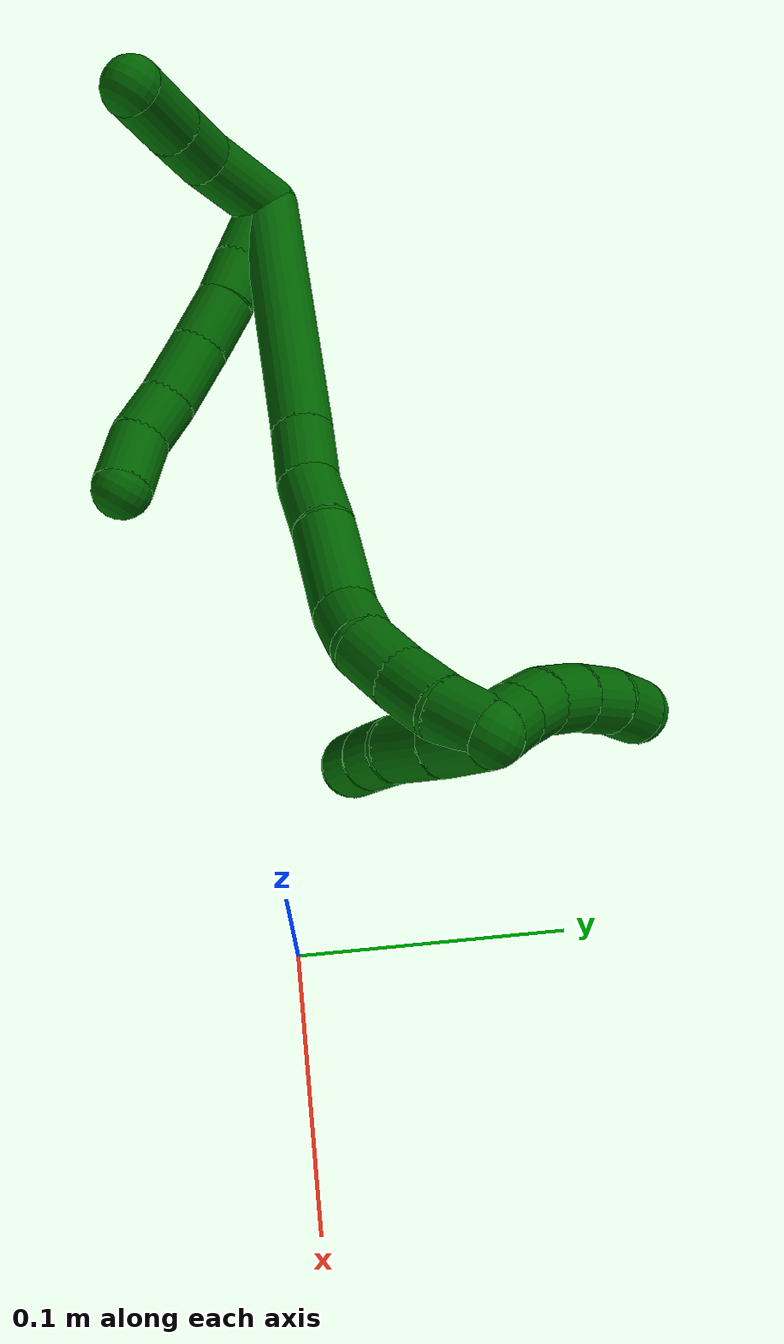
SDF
<sdf version="1.7">
 <world name="default">
  <model name="6">
   <static>0</static>
   <link name="6">
    <collision name="collision-cylinder-e_1_2_8">
     <pose>0.00349 0.000182 -0.014204 -3.12881 0.240931 -3.03612</pose>
     <geometry><cylinder><radius>0.0125</radius><length>0.029256</length></cylinder></geometry>
     <surface>
      <friction><ode><mu>1.16</mu><mu2>1.16</mu2><slip1>0</slip1><slip2>0</slip2></ode></friction>
      <contact><ode><kp>1e+06</kp><kd>1</kd><max_vel>0</max_vel><min_depth>0.001</min_depth></ode></contact>
     </surface>
    </collision>
    <visual name="visual-cylinder-e_1_2_8">
     <pose>0.00349 0.000182 -0.014204 -3.12881 0.240931 -3.03612</pose>
     <geometry><cylinder><radius>0.0125</radius><length>0.029256</length></cylinder></geometry>
     <material><ambient>0 0.392157 0.003922 1</ambient></material>
    </visual>
    <collision name="collision-cylinder-e_2_8_9">
     <pose>0.010541 0.000239 -0.03792 3.12859 0.35809 3.0698</pose>
     <geometry><cylinder><radius>0.0125</radius><length>0.020314</length></cylinder></geometry>
     <surface>
      <friction><ode><mu>1.16</mu><mu2>1.16</mu2><slip1>0</slip1><slip2>0</slip2></ode></friction>
      <contact><ode><kp>1e+06</kp><kd>1</kd><max_vel>0</max_vel><min_depth>0.001</min_depth></ode></contact>
     </surface>
    </collision>
    <visual name="visual-cylinder-e_2_8_9">
     <pose>0.010541 0.000239 -0.03792 3.12859 0.35809 3.0698</pose>
     <geometry><cylinder><radius>0.0125</radius><length>0.020314</length></cylinder></geometry>
     <material><ambient>0 0.392157 0.003922 1</ambient></material>
    </visual>
    <collision name="collision-cylinder-e_3_9_10">
     <pose>0.017687 -0.000939 -0.059281 3.0528 0.29287 2.55643</pose>
     <geometry><cylinder><radius>0.0125</radius><length>0.024849</length></cylinder></geometry>
     <surface>
      <friction><ode><mu>1.16</mu><mu2>1.16</mu2><slip1>0</slip1><slip2>0</slip2></ode></friction>
      <contact><ode><kp>1e+06</kp><kd>1</kd><max_vel>0</max_vel><min_depth>0.001</min_depth></ode></contact>
     </surface>
    </collision>
    <visual name="visual-cylinder-e_3_9_10">
     <pose>0.017687 -0.000939 -0.059281 3.0528 0.29287 2.55643</pose>
     <geometry><cylinder><radius>0.0125</radius><length>0.024849</length></cylinder></geometry>
     <material><ambient>0 0.392157 0.003922 1</ambient></material>
    </visual>
    <collision name="collision-cylinder-e_4_10_11">
     <pose>0.025887 -0.003619 -0.084447 3.02018 0.331165 2.44392</pose>
     <geometry><cylinder><radius>0.0125</radius><length>0.028376</length></cylinder></geometry>
     <surface>
      <friction><ode><mu>1.16</mu><mu2>1.16</mu2><slip1>0</slip1><slip2>0</slip2></ode></friction>
      <contact><ode><kp>1e+06</kp><kd>1</kd><max_vel>0</max_vel><min_depth>0.001</min_depth></ode></contact>
     </surface>
    </collision>
    <visual name="visual-cylinder-e_4_10_11">
     <pose>0.025887 -0.003619 -0.084447 3.02018 0.331165 2.44392</pose>
     <geometry><cylinder><radius>0.0125</radius><length>0.028376</length></cylinder></geometry>
     <material><ambient>0 0.392157 0.003922 1</ambient></material>
    </visual>
    <collision name="collision-cylinder-e_5_11_12">
     <pose>0.034332 -0.007424 -0.107538 2.92207 0.365502 2.0662</pose>
     <geometry><cylinder><radius>0.0125</radius><length>0.02144</length></cylinder></geometry>
     <surface>
      <friction><ode><mu>1.16</mu><mu2>1.16</mu2><slip1>0</slip1><slip2>0</slip2></ode></friction>
      <contact><ode><kp>1e+06</kp><kd>1</kd><max_vel>0</max_vel><min_depth>0.001</min_depth></ode></contact>
     </surface>
    </collision>
    <visual name="visual-cylinder-e_5_11_12">
     <pose>0.034332 -0.007424 -0.107538 2.92207 0.365502 2.0662</pose>
     <geometry><cylinder><radius>0.0125</radius><length>0.02144</length></cylinder></geometry>
     <material><ambient>0 0.392157 0.003922 1</ambient></material>
    </visual>
    <collision name="collision-cylinder-e_6_12_6">
     <pose>0.045379 -0.009849 -0.127979 3.11867 0.594488 3.06679</pose>
     <geometry><cylinder><radius>0.0125</radius><length>0.025765</length></cylinder></geometry>
     <surface>
      <friction><ode><mu>1.16</mu><mu2>1.16</mu2><slip1>0</slip1><slip2>0</slip2></ode></friction>
      <contact><ode><kp>1e+06</kp><kd>1</kd><max_vel>0</max_vel><min_depth>0.001</min_depth></ode></contact>
     </surface>
    </collision>
    <visual name="visual-cylinder-e_6_12_6">
     <pose>0.045379 -0.009849 -0.127979 3.11867 0.594488 3.06679</pose>
     <geometry><cylinder><radius>0.0125</radius><length>0.025765</length></cylinder></geometry>
     <material><ambient>0 0.392157 0.003922 1</ambient></material>
    </visual>
    <collision name="collision-cylinder-e_1_2_13">
     <pose>0.006313 -0.018989 -0.000992 1.62298 0.320573 0.337438</pose>
     <geometry><cylinder><radius>0.0125</radius><length>0.040072</length></cylinder></geometry>
     <surface>
      <friction><ode><mu>1.16</mu><mu2>1.16</mu2><slip1>0</slip1><slip2>0</slip2></ode></friction>
      <contact><ode><kp>1e+06</kp><kd>1</kd><max_vel>0</max_vel><min_depth>0.001</min_depth></ode></contact>
     </surface>
    </collision>
    <visual name="visual-cylinder-e_1_2_13">
     <pose>0.006313 -0.018989 -0.000992 1.62298 0.320573 0.337438</pose>
     <geometry><cylinder><radius>0.0125</radius><length>0.040072</length></cylinder></geometry>
     <material><ambient>0 0.392157 0.003922 1</ambient></material>
    </visual>
    <collision name="collision-cylinder-e_2_13_14">
     <pose>0.021068 -0.048755 -0.002668 1.63423 0.663471 0.703546</pose>
     <geometry><cylinder><radius>0.0125</radius><length>0.027413</length></cylinder></geometry>
     <surface>
      <friction><ode><mu>1.16</mu><mu2>1.16</mu2><slip1>0</slip1><slip2>0</slip2></ode></friction>
      <contact><ode><kp>1e+06</kp><kd>1</kd><max_vel>0</max_vel><min_depth>0.001</min_depth></ode></contact>
     </surface>
    </collision>
    <visual name="visual-cylinder-e_2_13_14">
     <pose>0.021068 -0.048755 -0.002668 1.63423 0.663471 0.703546</pose>
     <geometry><cylinder><radius>0.0125</radius><length>0.027413</length></cylinder></geometry>
     <material><ambient>0 0.392157 0.003922 1</ambient></material>
    </visual>
    <collision name="collision-cylinder-e_3_14_5">
     <pose>0.039709 -0.072175 -0.004013 1.62299 0.678167 0.711594</pose>
     <geometry><cylinder><radius>0.0125</radius><length>0.032516</length></cylinder></geometry>
     <surface>
      <friction><ode><mu>1.16</mu><mu2>1.16</mu2><slip1>0</slip1><slip2>0</slip2></ode></friction>
      <contact><ode><kp>1e+06</kp><kd>1</kd><max_vel>0</max_vel><min_depth>0.001</min_depth></ode></contact>
     </surface>
    </collision>
    <visual name="visual-cylinder-e_3_14_5">
     <pose>0.039709 -0.072175 -0.004013 1.62299 0.678167 0.711594</pose>
     <geometry><cylinder><radius>0.0125</radius><length>0.032516</length></cylinder></geometry>
     <material><ambient>0 0.392157 0.003922 1</ambient></material>
    </visual>
    <collision name="collision-cylinder-e_1_2_15">
     <pose>0.038771 0.017348 -0.042114 -2.75085 0.70521 -2.15476</pose>
     <geometry><cylinder><radius>0.0125</radius><length>0.119629</length></cylinder></geometry>
     <surface>
      <friction><ode><mu>1.16</mu><mu2>1.16</mu2><slip1>0</slip1><slip2>0</slip2></ode></friction>
      <contact><ode><kp>1e+06</kp><kd>1</kd><max_vel>0</max_vel><min_depth>0.001</min_depth></ode></contact>
     </surface>
    </collision>
    <visual name="visual-cylinder-e_1_2_15">
     <pose>0.038771 0.017348 -0.042114 -2.75085 0.70521 -2.15476</pose>
     <geometry><cylinder><radius>0.0125</radius><length>0.119629</length></cylinder></geometry>
     <material><ambient>0 0.392157 0.003922 1</ambient></material>
    </visual>
    <collision name="collision-cylinder-e_2_15_16">
     <pose>0.085975 0.037949 -0.093161 -2.79233 0.725599 -2.27145</pose>
     <geometry><cylinder><radius>0.0125</radius><length>0.025415</length></cylinder></geometry>
     <surface>
      <friction><ode><mu>1.16</mu><mu2>1.16</mu2><slip1>0</slip1><slip2>0</slip2></ode></friction>
      <contact><ode><kp>1e+06</kp><kd>1</kd><max_vel>0</max_vel><min_depth>0.001</min_depth></ode></contact>
     </surface>
    </collision>
    <visual name="visual-cylinder-e_2_15_16">
     <pose>0.085975 0.037949 -0.093161 -2.79233 0.725599 -2.27145</pose>
     <geometry><cylinder><radius>0.0125</radius><length>0.025415</length></cylinder></geometry>
     <material><ambient>0 0.392157 0.003922 1</ambient></material>
    </visual>
    <collision name="collision-cylinder-e_3_16_17">
     <pose>0.105604 0.043892 -0.109015 -2.77089 0.985136 -2.46937</pose>
     <geometry><cylinder><radius>0.0125</radius><length>0.026871</length></cylinder></geometry>
     <surface>
      <friction><ode><mu>1.16</mu><mu2>1.16</mu2><slip1>0</slip1><slip2>0</slip2></ode></friction>
      <contact><ode><kp>1e+06</kp><kd>1</kd><max_vel>0</max_vel><min_depth>0.001</min_depth></ode></contact>
     </surface>
    </collision>
    <visual name="visual-cylinder-e_3_16_17">
     <pose>0.105604 0.043892 -0.109015 -2.77089 0.985136 -2.46937</pose>
     <geometry><cylinder><radius>0.0125</radius><length>0.026871</length></cylinder></geometry>
     <material><ambient>0 0.392157 0.003922 1</ambient></material>
    </visual>
    <collision name="collision-cylinder-e_4_17_18">
     <pose>0.131756 0.052029 -0.128139 -2.72177 0.841607 -2.25298</pose>
     <geometry><cylinder><radius>0.0125</radius><length>0.040111</length></cylinder></geometry>
     <surface>
      <friction><ode><mu>1.16</mu><mu2>1.16</mu2><slip1>0</slip1><slip2>0</slip2></ode></friction>
      <contact><ode><kp>1e+06</kp><kd>1</kd><max_vel>0</max_vel><min_depth>0.001</min_depth></ode></contact>
     </surface>
    </collision>
    <visual name="visual-cylinder-e_4_17_18">
     <pose>0.131756 0.052029 -0.128139 -2.72177 0.841607 -2.25298</pose>
     <geometry><cylinder><radius>0.0125</radius><length>0.040111</length></cylinder></geometry>
     <material><ambient>0 0.392157 0.003922 1</ambient></material>
    </visual>
    <collision name="collision-cylinder-e_5_18_19">
     <pose>0.1568 0.058873 -0.144225 -2.7963 1.18245 -2.63332</pose>
     <geometry><cylinder><radius>0.0125</radius><length>0.021801</length></cylinder></geometry>
     <surface>
      <friction><ode><mu>1.16</mu><mu2>1.16</mu2><slip1>0</slip1><slip2>0</slip2></ode></friction>
      <contact><ode><kp>1e+06</kp><kd>1</kd><max_vel>0</max_vel><min_depth>0.001</min_depth></ode></contact>
     </surface>
    </collision>
    <visual name="visual-cylinder-e_5_18_19">
     <pose>0.1568 0.058873 -0.144225 -2.7963 1.18245 -2.63332</pose>
     <geometry><cylinder><radius>0.0125</radius><length>0.021801</length></cylinder></geometry>
     <material><ambient>0 0.392157 0.003922 1</ambient></material>
    </visual>
    <collision name="collision-cylinder-e_6_19_20">
     <pose>0.176999 0.065074 -0.150114 -1.96626 1.0953 -1.48261</pose>
     <geometry><cylinder><radius>0.0125</radius><length>0.022744</length></cylinder></geometry>
     <surface>
      <friction><ode><mu>1.16</mu><mu2>1.16</mu2><slip1>0</slip1><slip2>0</slip2></ode></friction>
      <contact><ode><kp>1e+06</kp><kd>1</kd><max_vel>0</max_vel><min_depth>0.001</min_depth></ode></contact>
     </surface>
    </collision>
    <visual name="visual-cylinder-e_6_19_20">
     <pose>0.176999 0.065074 -0.150114 -1.96626 1.0953 -1.48261</pose>
     <geometry><cylinder><radius>0.0125</radius><length>0.022744</length></cylinder></geometry>
     <material><ambient>0 0.392157 0.003922 1</ambient></material>
    </visual>
    <collision name="collision-cylinder-e_7_20_21">
     <pose>0.197712 0.073772 -0.153339 -1.87425 1.20335 -1.50307</pose>
     <geometry><cylinder><radius>0.0125</radius><length>0.022721</length></cylinder></geometry>
     <surface>
      <friction><ode><mu>1.16</mu><mu2>1.16</mu2><slip1>0</slip1><slip2>0</slip2></ode></friction>
      <contact><ode><kp>1e+06</kp><kd>1</kd><max_vel>0</max_vel><min_depth>0.001</min_depth></ode></contact>
     </surface>
    </collision>
    <visual name="visual-cylinder-e_7_20_21">
     <pose>0.197712 0.073772 -0.153339 -1.87425 1.20335 -1.50307</pose>
     <geometry><cylinder><radius>0.0125</radius><length>0.022721</length></cylinder></geometry>
     <material><ambient>0 0.392157 0.003922 1</ambient></material>
    </visual>
    <collision name="collision-cylinder-e_8_21_1">
     <pose>0.217175 0.083021 -0.154376 -1.53668 1.02704 -0.998093</pose>
     <geometry><cylinder><radius>0.0125</radius><length>0.020709</length></cylinder></geometry>
     <surface>
      <friction><ode><mu>1.16</mu><mu2>1.16</mu2><slip1>0</slip1><slip2>0</slip2></ode></friction>
      <contact><ode><kp>1e+06</kp><kd>1</kd><max_vel>0</max_vel><min_depth>0.001</min_depth></ode></contact>
     </surface>
    </collision>
    <visual name="visual-cylinder-e_8_21_1">
     <pose>0.217175 0.083021 -0.154376 -1.53668 1.02704 -0.998093</pose>
     <geometry><cylinder><radius>0.0125</radius><length>0.020709</length></cylinder></geometry>
     <material><ambient>0 0.392157 0.003922 1</ambient></material>
    </visual>
    <collision name="collision-cylinder-e_1_1_22">
     <pose>0.21431 0.088115 -0.159401 3.09177 -1.15237 -3.06493</pose>
     <geometry><cylinder><radius>0.0125</radius><length>0.025667</length></cylinder></geometry>
     <surface>
      <friction><ode><mu>1.16</mu><mu2>1.16</mu2><slip1>0</slip1><slip2>0</slip2></ode></friction>
      <contact><ode><kp>1e+06</kp><kd>1</kd><max_vel>0</max_vel><min_depth>0.001</min_depth></ode></contact>
     </surface>
    </collision>
    <visual name="visual-cylinder-e_1_1_22">
     <pose>0.21431 0.088115 -0.159401 3.09177 -1.15237 -3.06493</pose>
     <geometry><cylinder><radius>0.0125</radius><length>0.025667</length></cylinder></geometry>
     <material><ambient>0 0.392157 0.003922 1</ambient></material>
    </visual>
    <collision name="collision-cylinder-e_2_22_23">
     <pose>0.190417 0.087267 -0.169485 3.02154 -1.18714 -2.96392</pose>
     <geometry><cylinder><radius>0.0125</radius><length>0.026241</length></cylinder></geometry>
     <surface>
      <friction><ode><mu>1.16</mu><mu2>1.16</mu2><slip1>0</slip1><slip2>0</slip2></ode></friction>
      <contact><ode><kp>1e+06</kp><kd>1</kd><max_vel>0</max_vel><min_depth>0.001</min_depth></ode></contact>
     </surface>
    </collision>
    <visual name="visual-cylinder-e_2_22_23">
     <pose>0.190417 0.087267 -0.169485 3.02154 -1.18714 -2.96392</pose>
     <geometry><cylinder><radius>0.0125</radius><length>0.026241</length></cylinder></geometry>
     <material><ambient>0 0.392157 0.003922 1</ambient></material>
    </visual>
    <collision name="collision-cylinder-e_3_23_24">
     <pose>0.168304 0.088764 -0.17781 -2.59764 -1.18583 2.35672</pose>
     <geometry><cylinder><radius>0.0125</radius><length>0.021466</length></cylinder></geometry>
     <surface>
      <friction><ode><mu>1.16</mu><mu2>1.16</mu2><slip1>0</slip1><slip2>0</slip2></ode></friction>
      <contact><ode><kp>1e+06</kp><kd>1</kd><max_vel>0</max_vel><min_depth>0.001</min_depth></ode></contact>
     </surface>
    </collision>
    <visual name="visual-cylinder-e_3_23_24">
     <pose>0.168304 0.088764 -0.17781 -2.59764 -1.18583 2.35672</pose>
     <geometry><cylinder><radius>0.0125</radius><length>0.021466</length></cylinder></geometry>
     <material><ambient>0 0.392157 0.003922 1</ambient></material>
    </visual>
    <collision name="collision-cylinder-e_4_24_4">
     <pose>0.146035 0.094522 -0.184714 -2.32587 -1.18234 1.99771</pose>
     <geometry><cylinder><radius>0.0125</radius><length>0.026627</length></cylinder></geometry>
     <surface>
      <friction><ode><mu>1.16</mu><mu2>1.16</mu2><slip1>0</slip1><slip2>0</slip2></ode></friction>
      <contact><ode><kp>1e+06</kp><kd>1</kd><max_vel>0</max_vel><min_depth>0.001</min_depth></ode></contact>
     </surface>
    </collision>
    <visual name="visual-cylinder-e_4_24_4">
     <pose>0.146035 0.094522 -0.184714 -2.32587 -1.18234 1.99771</pose>
     <geometry><cylinder><radius>0.0125</radius><length>0.026627</length></cylinder></geometry>
     <material><ambient>0 0.392157 0.003922 1</ambient></material>
    </visual>
    <collision name="collision-cylinder-e_1_1_25">
     <pose>0.2194 0.094496 -0.149893 -0.958356 -0.725635 0.389479</pose>
     <geometry><cylinder><radius>0.0125</radius><length>0.02</length></cylinder></geometry>
     <surface>
      <friction><ode><mu>1.16</mu><mu2>1.16</mu2><slip1>0</slip1><slip2>0</slip2></ode></friction>
      <contact><ode><kp>1e+06</kp><kd>1</kd><max_vel>0</max_vel><min_depth>0.001</min_depth></ode></contact>
     </surface>
    </collision>
    <visual name="visual-cylinder-e_1_1_25">
     <pose>0.2194 0.094496 -0.149893 -0.958356 -0.725635 0.389479</pose>
     <geometry><cylinder><radius>0.0125</radius><length>0.02</length></cylinder></geometry>
     <material><ambient>0 0.392157 0.003922 1</ambient></material>
    </visual>
    <collision name="collision-cylinder-e_2_25_26">
     <pose>0.20742 0.107276 -0.140388 -0.907405 -0.563798 0.280591</pose>
     <geometry><cylinder><radius>0.0125</radius><length>0.02</length></cylinder></geometry>
     <surface>
      <friction><ode><mu>1.16</mu><mu2>1.16</mu2><slip1>0</slip1><slip2>0</slip2></ode></friction>
      <contact><ode><kp>1e+06</kp><kd>1</kd><max_vel>0</max_vel><min_depth>0.001</min_depth></ode></contact>
     </surface>
    </collision>
    <visual name="visual-cylinder-e_2_25_26">
     <pose>0.20742 0.107276 -0.140388 -0.907405 -0.563798 0.280591</pose>
     <geometry><cylinder><radius>0.0125</radius><length>0.02</length></cylinder></geometry>
     <material><ambient>0 0.392157 0.003922 1</ambient></material>
    </visual>
    <collision name="collision-cylinder-e_3_26_27">
     <pose>0.198431 0.122259 -0.131007 -1.10586 -0.373127 0.231937</pose>
     <geometry><cylinder><radius>0.0125</radius><length>0.02</length></cylinder></geometry>
     <surface>
      <friction><ode><mu>1.16</mu><mu2>1.16</mu2><slip1>0</slip1><slip2>0</slip2></ode></friction>
      <contact><ode><kp>1e+06</kp><kd>1</kd><max_vel>0</max_vel><min_depth>0.001</min_depth></ode></contact>
     </surface>
    </collision>
    <visual name="visual-cylinder-e_3_26_27">
     <pose>0.198431 0.122259 -0.131007 -1.10586 -0.373127 0.231937</pose>
     <geometry><cylinder><radius>0.0125</radius><length>0.02</length></cylinder></geometry>
     <material><ambient>0 0.392157 0.003922 1</ambient></material>
    </visual>
    <collision name="collision-cylinder-e_4_27_28">
     <pose>0.191518 0.139547 -0.123838 -1.24843 -0.332896 0.240849</pose>
     <geometry><cylinder><radius>0.0125</radius><length>0.02</length></cylinder></geometry>
     <surface>
      <friction><ode><mu>1.16</mu><mu2>1.16</mu2><slip1>0</slip1><slip2>0</slip2></ode></friction>
      <contact><ode><kp>1e+06</kp><kd>1</kd><max_vel>0</max_vel><min_depth>0.001</min_depth></ode></contact>
     </surface>
    </collision>
    <visual name="visual-cylinder-e_4_27_28">
     <pose>0.191518 0.139547 -0.123838 -1.24843 -0.332896 0.240849</pose>
     <geometry><cylinder><radius>0.0125</radius><length>0.02</length></cylinder></geometry>
     <material><ambient>0 0.392157 0.003922 1</ambient></material>
    </visual>
    <collision name="collision-cylinder-e_5_28_3">
     <pose>0.184232 0.157562 -0.119447 -1.41769 -0.413436 0.355867</pose>
     <geometry><cylinder><radius>0.0125</radius><length>0.02</length></cylinder></geometry>
     <surface>
      <friction><ode><mu>1.16</mu><mu2>1.16</mu2><slip1>0</slip1><slip2>0</slip2></ode></friction>
      <contact><ode><kp>1e+06</kp><kd>1</kd><max_vel>0</max_vel><min_depth>0.001</min_depth></ode></contact>
     </surface>
    </collision>
    <visual name="visual-cylinder-e_5_28_3">
     <pose>0.184232 0.157562 -0.119447 -1.41769 -0.413436 0.355867</pose>
     <geometry><cylinder><radius>0.0125</radius><length>0.02</length></cylinder></geometry>
     <material><ambient>0 0.392157 0.003922 1</ambient></material>
    </visual>
    <collision name="collision-sphere-3">
     <pose>0.180215 0.166612 -0.118051 0 -0 0</pose>
     <geometry><sphere><radius>0.0125</radius></sphere></geometry>
     <surface>
      <friction><ode><mu>1.16</mu><mu2>1.16</mu2><slip1>0</slip1><slip2>0</slip2></ode></friction>
      <contact><ode><kp>1e+06</kp><kd>1</kd><max_vel>0</max_vel><min_depth>0.001</min_depth></ode></contact>
     </surface>
    </collision>
    <visual name="visual-sphere-3">
     <pose>0.180215 0.166612 -0.118051 0 -0 0</pose>
     <geometry><sphere><radius>0.0125</radius></sphere></geometry>
     <material><ambient>0 0.392157 0.003922 1</ambient></material>
    </visual>
    <collision name="collision-sphere-28">
     <pose>0.18825 0.148511 -0.120844 0 -0 0</pose>
     <geometry><sphere><radius>0.0125</radius></sphere></geometry>
     <surface>
      <friction><ode><mu>1.16</mu><mu2>1.16</mu2><slip1>0</slip1><slip2>0</slip2></ode></friction>
      <contact><ode><kp>1e+06</kp><kd>1</kd><max_vel>0</max_vel><min_depth>0.001</min_depth></ode></contact>
     </surface>
    </collision>
    <visual name="visual-sphere-28">
     <pose>0.18825 0.148511 -0.120844 0 -0 0</pose>
     <geometry><sphere><radius>0.0125</radius></sphere></geometry>
     <material><ambient>0 0.392157 0.003922 1</ambient></material>
    </visual>
    <collision name="collision-sphere-27">
     <pose>0.194785 0.130583 -0.126832 0 -0 0</pose>
     <geometry><sphere><radius>0.0125</radius></sphere></geometry>
     <surface>
      <friction><ode><mu>1.16</mu><mu2>1.16</mu2><slip1>0</slip1><slip2>0</slip2></ode></friction>
      <contact><ode><kp>1e+06</kp><kd>1</kd><max_vel>0</max_vel><min_depth>0.001</min_depth></ode></contact>
     </surface>
    </collision>
    <visual name="visual-sphere-27">
     <pose>0.194785 0.130583 -0.126832 0 -0 0</pose>
     <geometry><sphere><radius>0.0125</radius></sphere></geometry>
     <material><ambient>0 0.392157 0.003922 1</ambient></material>
    </visual>
    <collision name="collision-sphere-26">
     <pose>0.202076 0.113936 -0.135183 0 -0 0</pose>
     <geometry><sphere><radius>0.0125</radius></sphere></geometry>
     <surface>
      <friction><ode><mu>1.16</mu><mu2>1.16</mu2><slip1>0</slip1><slip2>0</slip2></ode></friction>
      <contact><ode><kp>1e+06</kp><kd>1</kd><max_vel>0</max_vel><min_depth>0.001</min_depth></ode></contact>
     </surface>
    </collision>
    <visual name="visual-sphere-26">
     <pose>0.202076 0.113936 -0.135183 0 -0 0</pose>
     <geometry><sphere><radius>0.0125</radius></sphere></geometry>
     <material><ambient>0 0.392157 0.003922 1</ambient></material>
    </visual>
    <collision name="collision-sphere-25">
     <pose>0.212764 0.100617 -0.145592 0 -0 0</pose>
     <geometry><sphere><radius>0.0125</radius></sphere></geometry>
     <surface>
      <friction><ode><mu>1.16</mu><mu2>1.16</mu2><slip1>0</slip1><slip2>0</slip2></ode></friction>
      <contact><ode><kp>1e+06</kp><kd>1</kd><max_vel>0</max_vel><min_depth>0.001</min_depth></ode></contact>
     </surface>
    </collision>
    <visual name="visual-sphere-25">
     <pose>0.212764 0.100617 -0.145592 0 -0 0</pose>
     <geometry><sphere><radius>0.0125</radius></sphere></geometry>
     <material><ambient>0 0.392157 0.003922 1</ambient></material>
    </visual>
    <collision name="collision-sphere-4">
     <pose>0.133713 0.098195 -0.18817 0 -0 0</pose>
     <geometry><sphere><radius>0.0125</radius></sphere></geometry>
     <surface>
      <friction><ode><mu>1.16</mu><mu2>1.16</mu2><slip1>0</slip1><slip2>0</slip2></ode></friction>
      <contact><ode><kp>1e+06</kp><kd>1</kd><max_vel>0</max_vel><min_depth>0.001</min_depth></ode></contact>
     </surface>
    </collision>
    <visual name="visual-sphere-4">
     <pose>0.133713 0.098195 -0.18817 0 -0 0</pose>
     <geometry><sphere><radius>0.0125</radius></sphere></geometry>
     <material><ambient>0 0.392157 0.003922 1</ambient></material>
    </visual>
    <collision name="collision-sphere-24">
     <pose>0.158356 0.09085 -0.181259 0 -0 0</pose>
     <geometry><sphere><radius>0.0125</radius></sphere></geometry>
     <surface>
      <friction><ode><mu>1.16</mu><mu2>1.16</mu2><slip1>0</slip1><slip2>0</slip2></ode></friction>
      <contact><ode><kp>1e+06</kp><kd>1</kd><max_vel>0</max_vel><min_depth>0.001</min_depth></ode></contact>
     </surface>
    </collision>
    <visual name="visual-sphere-24">
     <pose>0.158356 0.09085 -0.181259 0 -0 0</pose>
     <geometry><sphere><radius>0.0125</radius></sphere></geometry>
     <material><ambient>0 0.392157 0.003922 1</ambient></material>
    </visual>
    <collision name="collision-sphere-23">
     <pose>0.178251 0.086679 -0.174361 0 -0 0</pose>
     <geometry><sphere><radius>0.0125</radius></sphere></geometry>
     <surface>
      <friction><ode><mu>1.16</mu><mu2>1.16</mu2><slip1>0</slip1><slip2>0</slip2></ode></friction>
      <contact><ode><kp>1e+06</kp><kd>1</kd><max_vel>0</max_vel><min_depth>0.001</min_depth></ode></contact>
     </surface>
    </collision>
    <visual name="visual-sphere-23">
     <pose>0.178251 0.086679 -0.174361 0 -0 0</pose>
     <geometry><sphere><radius>0.0125</radius></sphere></geometry>
     <material><ambient>0 0.392157 0.003922 1</ambient></material>
    </visual>
    <collision name="collision-sphere-22">
     <pose>0.202584 0.087855 -0.164609 0 -0 0</pose>
     <geometry><sphere><radius>0.0125</radius></sphere></geometry>
     <surface>
      <friction><ode><mu>1.16</mu><mu2>1.16</mu2><slip1>0</slip1><slip2>0</slip2></ode></friction>
      <contact><ode><kp>1e+06</kp><kd>1</kd><max_vel>0</max_vel><min_depth>0.001</min_depth></ode></contact>
     </surface>
    </collision>
    <visual name="visual-sphere-22">
     <pose>0.202584 0.087855 -0.164609 0 -0 0</pose>
     <geometry><sphere><radius>0.0125</radius></sphere></geometry>
     <material><ambient>0 0.392157 0.003922 1</ambient></material>
    </visual>
    <collision name="collision-sphere-1">
     <pose>0.226036 0.088374 -0.154193 0 -0 0</pose>
     <geometry><sphere><radius>0.0125</radius></sphere></geometry>
     <surface>
      <friction><ode><mu>1.16</mu><mu2>1.16</mu2><slip1>0</slip1><slip2>0</slip2></ode></friction>
      <contact><ode><kp>1e+06</kp><kd>1</kd><max_vel>0</max_vel><min_depth>0.001</min_depth></ode></contact>
     </surface>
    </collision>
    <visual name="visual-sphere-1">
     <pose>0.226036 0.088374 -0.154193 0 -0 0</pose>
     <geometry><sphere><radius>0.0125</radius></sphere></geometry>
     <material><ambient>0 0.392157 0.003922 1</ambient></material>
    </visual>
    <collision name="collision-sphere-21">
     <pose>0.208314 0.077667 -0.154559 0 -0 0</pose>
     <geometry><sphere><radius>0.0125</radius></sphere></geometry>
     <surface>
      <friction><ode><mu>1.16</mu><mu2>1.16</mu2><slip1>0</slip1><slip2>0</slip2></ode></friction>
      <contact><ode><kp>1e+06</kp><kd>1</kd><max_vel>0</max_vel><min_depth>0.001</min_depth></ode></contact>
     </surface>
    </collision>
    <visual name="visual-sphere-21">
     <pose>0.208314 0.077667 -0.154559 0 -0 0</pose>
     <geometry><sphere><radius>0.0125</radius></sphere></geometry>
     <material><ambient>0 0.392157 0.003922 1</ambient></material>
    </visual>
    <collision name="collision-sphere-12">
     <pose>0.038164 -0.009605 -0.117309 0 -0 0</pose>
     <geometry><sphere><radius>0.0125</radius></sphere></geometry>
     <surface>
      <friction><ode><mu>1.16</mu><mu2>1.16</mu2><slip1>0</slip1><slip2>0</slip2></ode></friction>
      <contact><ode><kp>1e+06</kp><kd>1</kd><max_vel>0</max_vel><min_depth>0.001</min_depth></ode></contact>
     </surface>
    </collision>
    <visual name="visual-sphere-12">
     <pose>0.038164 -0.009605 -0.117309 0 -0 0</pose>
     <geometry><sphere><radius>0.0125</radius></sphere></geometry>
     <material><ambient>0 0.392157 0.003922 1</ambient></material>
    </visual>
    <collision name="collision-sphere-11">
     <pose>0.030501 -0.005244 -0.097766 0 -0 0</pose>
     <geometry><sphere><radius>0.0125</radius></sphere></geometry>
     <surface>
      <friction><ode><mu>1.16</mu><mu2>1.16</mu2><slip1>0</slip1><slip2>0</slip2></ode></friction>
      <contact><ode><kp>1e+06</kp><kd>1</kd><max_vel>0</max_vel><min_depth>0.001</min_depth></ode></contact>
     </surface>
    </collision>
    <visual name="visual-sphere-11">
     <pose>0.030501 -0.005244 -0.097766 0 -0 0</pose>
     <geometry><sphere><radius>0.0125</radius></sphere></geometry>
     <material><ambient>0 0.392157 0.003922 1</ambient></material>
    </visual>
    <collision name="collision-sphere-10">
     <pose>0.021274 -0.001994 -0.071129 0 -0 0</pose>
     <geometry><sphere><radius>0.0125</radius></sphere></geometry>
     <surface>
      <friction><ode><mu>1.16</mu><mu2>1.16</mu2><slip1>0</slip1><slip2>0</slip2></ode></friction>
      <contact><ode><kp>1e+06</kp><kd>1</kd><max_vel>0</max_vel><min_depth>0.001</min_depth></ode></contact>
     </surface>
    </collision>
    <visual name="visual-sphere-10">
     <pose>0.021274 -0.001994 -0.071129 0 -0 0</pose>
     <geometry><sphere><radius>0.0125</radius></sphere></geometry>
     <material><ambient>0 0.392157 0.003922 1</ambient></material>
    </visual>
    <collision name="collision-sphere-9">
     <pose>0.0141 0.000116 -0.047432 0 -0 0</pose>
     <geometry><sphere><radius>0.0125</radius></sphere></geometry>
     <surface>
      <friction><ode><mu>1.16</mu><mu2>1.16</mu2><slip1>0</slip1><slip2>0</slip2></ode></friction>
      <contact><ode><kp>1e+06</kp><kd>1</kd><max_vel>0</max_vel><min_depth>0.001</min_depth></ode></contact>
     </surface>
    </collision>
    <visual name="visual-sphere-9">
     <pose>0.0141 0.000116 -0.047432 0 -0 0</pose>
     <geometry><sphere><radius>0.0125</radius></sphere></geometry>
     <material><ambient>0 0.392157 0.003922 1</ambient></material>
    </visual>
    <collision name="collision-sphere-2">
     <geometry><sphere><radius>0.0125</radius></sphere></geometry>
     <surface>
      <friction><ode><mu>1.16</mu><mu2>1.16</mu2><slip1>0</slip1><slip2>0</slip2></ode></friction>
      <contact><ode><kp>1e+06</kp><kd>1</kd><max_vel>0</max_vel><min_depth>0.001</min_depth></ode></contact>
     </surface>
    </collision>
    <visual name="visual-sphere-2">
     <geometry><sphere><radius>0.0125</radius></sphere></geometry>
     <material><ambient>0 0.392157 0.003922 1</ambient></material>
    </visual>
    <collision name="collision-sphere-19">
     <pose>0.166889 0.06027 -0.148109 0 -0 0</pose>
     <geometry><sphere><radius>0.0125</radius></sphere></geometry>
     <surface>
      <friction><ode><mu>1.16</mu><mu2>1.16</mu2><slip1>0</slip1><slip2>0</slip2></ode></friction>
      <contact><ode><kp>1e+06</kp><kd>1</kd><max_vel>0</max_vel><min_depth>0.001</min_depth></ode></contact>
     </surface>
    </collision>
    <visual name="visual-sphere-19">
     <pose>0.166889 0.06027 -0.148109 0 -0 0</pose>
     <geometry><sphere><radius>0.0125</radius></sphere></geometry>
     <material><ambient>0 0.392157 0.003922 1</ambient></material>
    </visual>
    <collision name="collision-sphere-8">
     <pose>0.006981 0.000363 -0.028409 0 -0 0</pose>
     <geometry><sphere><radius>0.0125</radius></sphere></geometry>
     <surface>
      <friction><ode><mu>1.16</mu><mu2>1.16</mu2><slip1>0</slip1><slip2>0</slip2></ode></friction>
      <contact><ode><kp>1e+06</kp><kd>1</kd><max_vel>0</max_vel><min_depth>0.001</min_depth></ode></contact>
     </surface>
    </collision>
    <visual name="visual-sphere-8">
     <pose>0.006981 0.000363 -0.028409 0 -0 0</pose>
     <geometry><sphere><radius>0.0125</radius></sphere></geometry>
     <material><ambient>0 0.392157 0.003922 1</ambient></material>
    </visual>
    <collision name="collision-sphere-6">
     <pose>0.052594 -0.010094 -0.138648 0 -0 0</pose>
     <geometry><sphere><radius>0.0125</radius></sphere></geometry>
     <surface>
      <friction><ode><mu>1.16</mu><mu2>1.16</mu2><slip1>0</slip1><slip2>0</slip2></ode></friction>
      <contact><ode><kp>1e+06</kp><kd>1</kd><max_vel>0</max_vel><min_depth>0.001</min_depth></ode></contact>
     </surface>
    </collision>
    <visual name="visual-sphere-6">
     <pose>0.052594 -0.010094 -0.138648 0 -0 0</pose>
     <geometry><sphere><radius>0.0125</radius></sphere></geometry>
     <material><ambient>0 0.392157 0.003922 1</ambient></material>
    </visual>
    <collision name="collision-sphere-13">
     <pose>0.012627 -0.037978 -0.001984 0 -0 0</pose>
     <geometry><sphere><radius>0.0125</radius></sphere></geometry>
     <surface>
      <friction><ode><mu>1.16</mu><mu2>1.16</mu2><slip1>0</slip1><slip2>0</slip2></ode></friction>
      <contact><ode><kp>1e+06</kp><kd>1</kd><max_vel>0</max_vel><min_depth>0.001</min_depth></ode></contact>
     </surface>
    </collision>
    <visual name="visual-sphere-13">
     <pose>0.012627 -0.037978 -0.001984 0 -0 0</pose>
     <geometry><sphere><radius>0.0125</radius></sphere></geometry>
     <material><ambient>0 0.392157 0.003922 1</ambient></material>
    </visual>
    <collision name="collision-sphere-14">
     <pose>0.029509 -0.059532 -0.003353 0 -0 0</pose>
     <geometry><sphere><radius>0.0125</radius></sphere></geometry>
     <surface>
      <friction><ode><mu>1.16</mu><mu2>1.16</mu2><slip1>0</slip1><slip2>0</slip2></ode></friction>
      <contact><ode><kp>1e+06</kp><kd>1</kd><max_vel>0</max_vel><min_depth>0.001</min_depth></ode></contact>
     </surface>
    </collision>
    <visual name="visual-sphere-14">
     <pose>0.029509 -0.059532 -0.003353 0 -0 0</pose>
     <geometry><sphere><radius>0.0125</radius></sphere></geometry>
     <material><ambient>0 0.392157 0.003922 1</ambient></material>
    </visual>
    <collision name="collision-sphere-5">
     <pose>0.049909 -0.084819 -0.004674 0 -0 0</pose>
     <geometry><sphere><radius>0.0125</radius></sphere></geometry>
     <surface>
      <friction><ode><mu>1.16</mu><mu2>1.16</mu2><slip1>0</slip1><slip2>0</slip2></ode></friction>
      <contact><ode><kp>1e+06</kp><kd>1</kd><max_vel>0</max_vel><min_depth>0.001</min_depth></ode></contact>
     </surface>
    </collision>
    <visual name="visual-sphere-5">
     <pose>0.049909 -0.084819 -0.004674 0 -0 0</pose>
     <geometry><sphere><radius>0.0125</radius></sphere></geometry>
     <material><ambient>0 0.392157 0.003922 1</ambient></material>
    </visual>
    <collision name="collision-sphere-15">
     <pose>0.077542 0.034696 -0.084228 0 -0 0</pose>
     <geometry><sphere><radius>0.0125</radius></sphere></geometry>
     <surface>
      <friction><ode><mu>1.16</mu><mu2>1.16</mu2><slip1>0</slip1><slip2>0</slip2></ode></friction>
      <contact><ode><kp>1e+06</kp><kd>1</kd><max_vel>0</max_vel><min_depth>0.001</min_depth></ode></contact>
     </surface>
    </collision>
    <visual name="visual-sphere-15">
     <pose>0.077542 0.034696 -0.084228 0 -0 0</pose>
     <geometry><sphere><radius>0.0125</radius></sphere></geometry>
     <material><ambient>0 0.392157 0.003922 1</ambient></material>
    </visual>
    <collision name="collision-sphere-16">
     <pose>0.094407 0.041202 -0.102093 0 -0 0</pose>
     <geometry><sphere><radius>0.0125</radius></sphere></geometry>
     <surface>
      <friction><ode><mu>1.16</mu><mu2>1.16</mu2><slip1>0</slip1><slip2>0</slip2></ode></friction>
      <contact><ode><kp>1e+06</kp><kd>1</kd><max_vel>0</max_vel><min_depth>0.001</min_depth></ode></contact>
     </surface>
    </collision>
    <visual name="visual-sphere-16">
     <pose>0.094407 0.041202 -0.102093 0 -0 0</pose>
     <geometry><sphere><radius>0.0125</radius></sphere></geometry>
     <material><ambient>0 0.392157 0.003922 1</ambient></material>
    </visual>
    <collision name="collision-sphere-17">
     <pose>0.1168 0.046583 -0.115937 0 -0 0</pose>
     <geometry><sphere><radius>0.0125</radius></sphere></geometry>
     <surface>
      <friction><ode><mu>1.16</mu><mu2>1.16</mu2><slip1>0</slip1><slip2>0</slip2></ode></friction>
      <contact><ode><kp>1e+06</kp><kd>1</kd><max_vel>0</max_vel><min_depth>0.001</min_depth></ode></contact>
     </surface>
    </collision>
    <visual name="visual-sphere-17">
     <pose>0.1168 0.046583 -0.115937 0 -0 0</pose>
     <geometry><sphere><radius>0.0125</radius></sphere></geometry>
     <material><ambient>0 0.392157 0.003922 1</ambient></material>
    </visual>
    <collision name="collision-sphere-18">
     <pose>0.146712 0.057476 -0.140341 0 -0 0</pose>
     <geometry><sphere><radius>0.0125</radius></sphere></geometry>
     <surface>
      <friction><ode><mu>1.16</mu><mu2>1.16</mu2><slip1>0</slip1><slip2>0</slip2></ode></friction>
      <contact><ode><kp>1e+06</kp><kd>1</kd><max_vel>0</max_vel><min_depth>0.001</min_depth></ode></contact>
     </surface>
    </collision>
    <visual name="visual-sphere-18">
     <pose>0.146712 0.057476 -0.140341 0 -0 0</pose>
     <geometry><sphere><radius>0.0125</radius></sphere></geometry>
     <material><ambient>0 0.392157 0.003922 1</ambient></material>
    </visual>
    <collision name="collision-sphere-20">
     <pose>0.18711 0.069877 -0.15212 0 -0 0</pose>
     <geometry><sphere><radius>0.0125</radius></sphere></geometry>
     <surface>
      <friction><ode><mu>1.16</mu><mu2>1.16</mu2><slip1>0</slip1><slip2>0</slip2></ode></friction>
      <contact><ode><kp>1e+06</kp><kd>1</kd><max_vel>0</max_vel><min_depth>0.001</min_depth></ode></contact>
     </surface>
    </collision>
    <visual name="visual-sphere-20">
     <pose>0.18711 0.069877 -0.15212 0 -0 0</pose>
     <geometry><sphere><radius>0.0125</radius></sphere></geometry>
     <material><ambient>0 0.392157 0.003922 1</ambient></material>
    </visual>
    <inertial>
     <pose>0.099887 0.038518 -0.093575 0 -0 0</pose>
     <mass>0.75</mass>
     <inertia>
      <ixx>-0.000139</ixx>
      <ixy>0</ixy>
      <ixz>0</ixz>
      <iyy>6.6e-05</iyy>
      <iyz>0</iyz>
      <izz>-0.000175</izz>
     </inertia>
    </inertial>
   </link>
   <pose>-0.318793 0.014196 0.014431 -1.13897 -0.885531 0.595399</pose>
  </model>
 </world>
</sdf>
